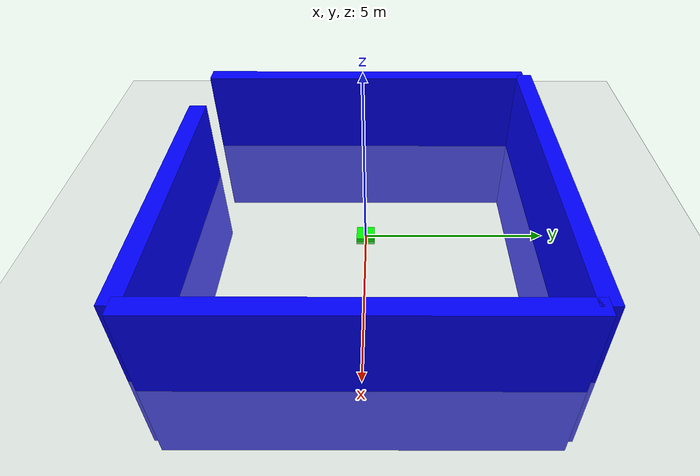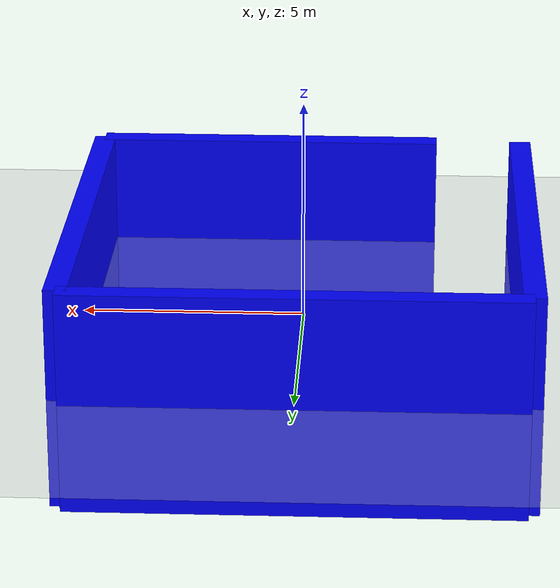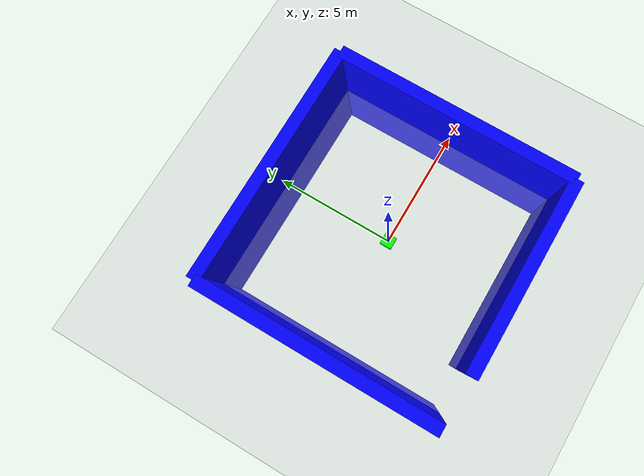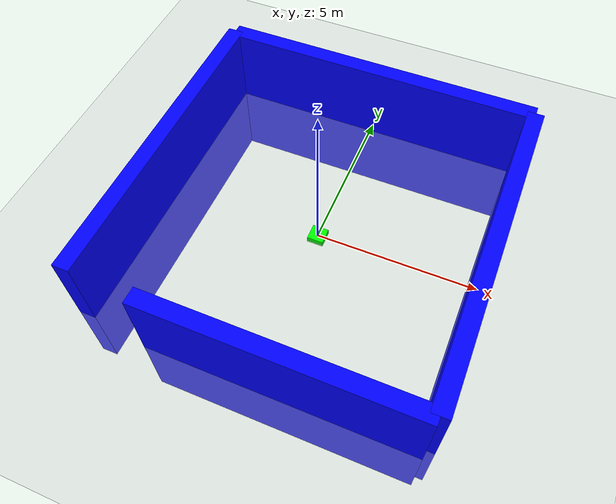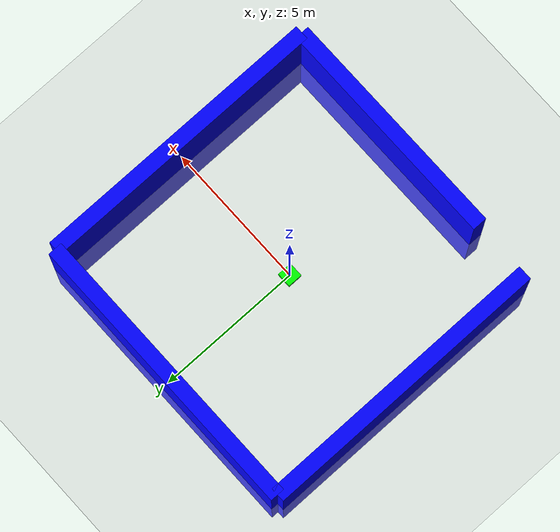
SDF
<?xml version="1.0"?>

<sdf version="1.6">
  <world name="drone_world">
    <gravity>0 0 0</gravity>
    <!-- Physics Configuration  -->
    <physics name="default_physics" type="ode">
      <max_step_size>0.001</max_step_size>
      <real_time_update_rate>1000</real_time_update_rate>

    </physics>

    <!-- nwm--><plugin
      filename="gz-sim-physics-system"
      name="gz::sim::systems::Physics">
    </plugin>
    <plugin
      filename="gz-sim-scene-broadcaster-system"
      name="gz::sim::systems::SceneBroadcaster">
    </plugin>
    <plugin
      filename="gz-sim-user-commands-system"
      name="gz::sim::systems::UserCommands">
    </plugin>
    <plugin
      filename="gz-sim-sensors-system"
      name="gz::sim::systems::Sensors">
      <render_engine>ogre2</render_engine>
    </plugin>
    <plugin filename="gz-sim-imu-system" name="gz::sim::systems::Imu" />

    <plugin filename="gz-sim-altimeter-system" name="gz::sim::systems::Altimeter" />

    <light type="directional" name="sun">
      <cast_shadows>true</cast_shadows>
      <pose>0 0 10 0 0 0</pose>
      <diffuse>0.8 0.8 0.8 1</diffuse>
      <specular>0.2 0.2 0.2 1</specular>
      <attenuation>
        <range>1000</range>
        <constant>0.9</constant>
        <linear>0.01</linear>
        <quadratic>0.001</quadratic>
      </attenuation>
      <direction>-0.5 0.1 -0.9</direction>
    </light>

    <model name="ground_plane">
      <static>true</static>
      <link name="link">
        <collision name="collision">
          <geometry>
            <plane>
              <normal>0 0 1</normal>
              <size>100 100</size>
            </plane>
          </geometry>
        </collision>
        <visual name="visual">
          <geometry>
            <plane>
              <normal>0 0 1</normal>
              <size>100 100</size>
            </plane>
          </geometry>
          <material>
            <ambient>0.8 0.8 0.8 1</ambient>
            <diffuse>0.8 0.8 0.8 1</diffuse>
            <specular>0.8 0.8 0.8 1</specular>
          </material>
        </visual>
      </link>
    </model>

    <!-- Spawn drone -->
    <include>
      <uri>model://drone_model.sdf</uri>
    </include>

    <!--wall-->
    <model name='wall'>
      <static>true</static>
      <pose>5 0 0 0 0 0</pose><!--pose
      relative to the world-->
      <link name='box'>
        <pose />
        <inertial> <!--inertial
          properties of the link mass, inertia matix-->
          <mass>1.14395</mass>
          <inertia>
            <ixx>9.532917</ixx>
            <ixy>0</ixy>
            <ixz>0</ixz>
            <iyy>0.023832</iyy>
            <iyz>0</iyz>
            <izz>9.556749</izz>
          </inertia>
        </inertial>
        <visual name='visual'>
          <geometry>
            <box>
              <size>0.5 10.0 5.0</size>
            </box>
          </geometry>
          <!--let's
          add color to our link-->
          <material>
            <ambient>0.0 0.0 1.0 1</ambient>
            <diffuse>0.0 0.0 1.0 1</diffuse>
            <specular>0.0 0.0 1.0 1</specular>
          </material>
        </visual>
        <collision name='collision'> <!--todo:
          describe why we need the collision-->
          <geometry>
            <box>
              <size>0.5 10.0 5.0</size>
            </box>
          </geometry>
        </collision>
        <sensor name='sensor_contact' type='contact'>
          <contact>
            <collision>collision</collision>
          </contact>
        </sensor>
      </link>
    </model>

        <!--wall2 back -->
    <model name='wall2'>
      <static>true</static>
      <pose>-5 0 0 0 0 0</pose><!--pose
      relative to the world-->
      <link name='box'>
        <pose />
        <inertial> <!--inertial
          properties of the link mass, inertia matix-->
          <mass>1.14395</mass>
          <inertia>
            <ixx>9.532917</ixx>
            <ixy>0</ixy>
            <ixz>0</ixz>
            <iyy>0.023832</iyy>
            <iyz>0</iyz>
            <izz>9.556749</izz>
          </inertia>
        </inertial>
        <visual name='visual'>
          <geometry>
            <box>
              <size>0.5 10.0 5.0</size>
            </box>
          </geometry>
          <material>
            <ambient>0.0 0.0 1.0 1</ambient>
            <diffuse>0.0 0.0 1.0 1</diffuse>
            <specular>0.0 0.0 1.0 1</specular>
          </material>
        </visual>
        <collision name='collision'>
          <geometry>
            <box>
              <size>0.5 10.0 5.0</size>
            </box>
          </geometry>
        </collision>
        <sensor name='sensor_contact' type='contact'>
          <contact>
            <collision>collision</collision>
          </contact>
        </sensor>
      </link>
    </model>

        <!--wall3 - left -->
    <model name='wall3'>
      <static>true</static>
      <pose>0 5 0 0 0 0</pose><!--pose
      relative to the world-->
      <link name='box'>
        <pose />
        <inertial> <!--inertial
          properties of the link mass, inertia matix-->
          <mass>1.14395</mass>
          <inertia>
            <ixx>9.532917</ixx>
            <ixy>0</ixy>
            <ixz>0</ixz>
            <iyy>0.023832</iyy>
            <iyz>0</iyz>
            <izz>9.556749</izz>
          </inertia>
        </inertial>
        <visual name='visual'>
          <geometry>
            <box>
              <size>10.0 0.5 5.0</size>
            </box>
          </geometry>
          <material>
            <ambient>0.0 0.0 1.0 1</ambient>
            <diffuse>0.0 0.0 1.0 1</diffuse>
            <specular>0.0 0.0 1.0 1</specular>
          </material>
        </visual>
        <collision name='collision'>
          <geometry>
            <box>
              <size>0.5 10.0 5.0</size>
            </box>
          </geometry>
        </collision>
        <sensor name='sensor_contact' type='contact'>
          <contact>
            <collision>collision</collision>
          </contact>
        </sensor>
      </link>
    </model>

            <!--wall4 - right -->
    <model name='wall4'>
      <static>true</static>
      <pose>1 -5 0 0 0 0</pose><!--pose
      relative to the world-->
      <link name='box'>
        <pose />
        <inertial> <!--inertial
          properties of the link mass, inertia matix-->
          <mass>1.14395</mass>
          <inertia>
            <ixx>9.532917</ixx>
            <ixy>0</ixy>
            <ixz>0</ixz>
            <iyy>0.023832</iyy>
            <iyz>0</iyz>
            <izz>9.556749</izz>
          </inertia>
        </inertial>
        <visual name='visual'>
          <geometry>
            <box>
              <size>8.0 0.5 5.0</size>
            </box>
          </geometry>
          <material>
            <ambient>0.0 0.0 1.0 1</ambient>
            <diffuse>0.0 0.0 1.0 1</diffuse>
            <specular>0.0 0.0 1.0 1</specular>
          </material>
        </visual>
        <collision name='collision'>
          <geometry>
            <box>
              <size>0.5 10.0 5.0</size>
            </box>
          </geometry>
        </collision>
        <sensor name='sensor_contact' type='contact'>
          <contact>
            <collision>collision</collision>
          </contact>
        </sensor>
      </link>
    </model>
  </world>
</sdf>

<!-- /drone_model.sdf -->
<sdf version="1.6">
  <model name="drone_model">
    <frame name="lidar_frame" attached_to='body'>
      <pose>0.8 0 0.5 0 0 0</pose>
    </frame>
    <static>false</static>
    <link name="body">
      <pose>0 0 0 0 0 0</pose>
      <inertial>
        <mass>1.0</mass>
        <inertia>
          <ixx>0.1</ixx>
          <ixy>0.0</ixy>
          <ixz>0.0</ixz>
          <iyy>0.1</iyy>
          <iyz>0.0</iyz>
          <izz>0.1</izz>
        </inertia>
      </inertial>
      <collision name="collision">
        <geometry>
          <box>
            <size>0.5 0.5 0.2</size>
          </box>
        </geometry>
      </collision>
      <visual name="visual">
        <geometry>
          <box>
            <size>0.5 0.5 0.2</size>
          </box>
        </geometry>
        <material>
          <ambient>0.0 1.0 0.0 1</ambient>
          <diffuse>0.0 1.0 0.0 1</diffuse>
          <specular>0.1 0.1 0.1 1</specular>
        </material>
      </visual>
      <!-- IMU Sensor -->
      <sensor name="imu_sensor" type="imu">
        <pose>0 0 0.1 0 0 0</pose>
        <always_on>1</always_on>
        <update_rate>1</update_rate>
        <visualize>true</visualize>
        <topic>imu</topic>
      </sensor>
      <!-- LiDAR Sensor -->
      <sensor name="gpu_lidar" type="gpu_lidar">
        <pose relative_to='lidar_frame'>0 0 0 0 0 0</pose>
        <topic>lidar</topic>
        <update_rate>1</update_rate>
        <ray>
          <scan>
            <horizontal>
              <samples>360</samples>
              <resolution>1</resolution>
              <min_angle>-1.396263</min_angle>
              <max_angle>1.396263</max_angle>
            </horizontal>
            <vertical>
              <samples>1</samples>
              <resolution>0.01</resolution>
              <min_angle>0</min_angle>
              <max_angle>0</max_angle>
            </vertical>
          </scan>
          <range>
            <min>0.08</min>
            <max>10.0</max>
            <resolution>0.01</resolution>
          </range>
        </ray>
        <always_on>1</always_on>
        <visualize>true</visualize>
      </sensor>
    </link>

    <plugin name="gz::sim::v8::systems::UserCommands" filename="gz-sim-user-commands-system">
    </plugin>

  </model>
</sdf>
